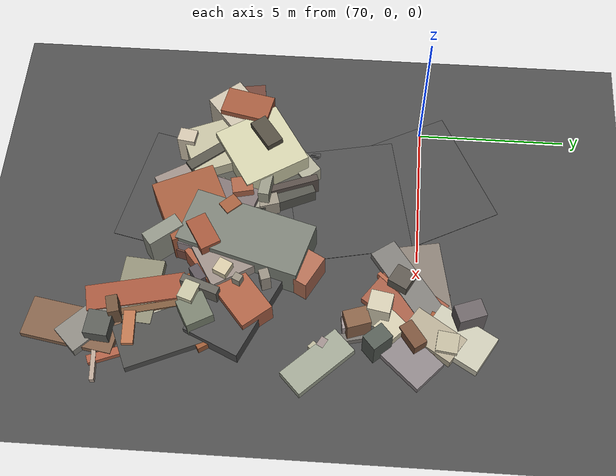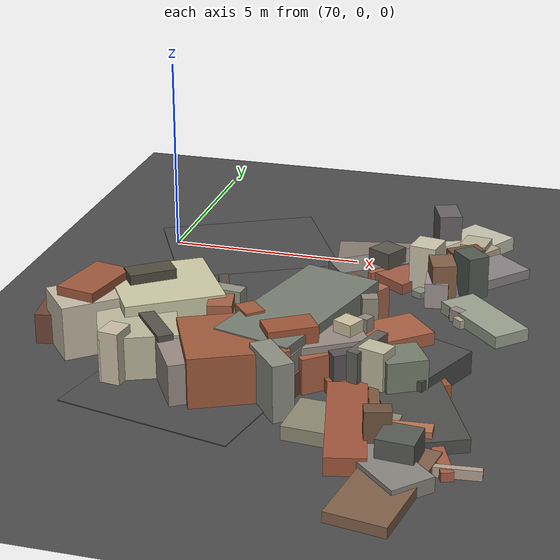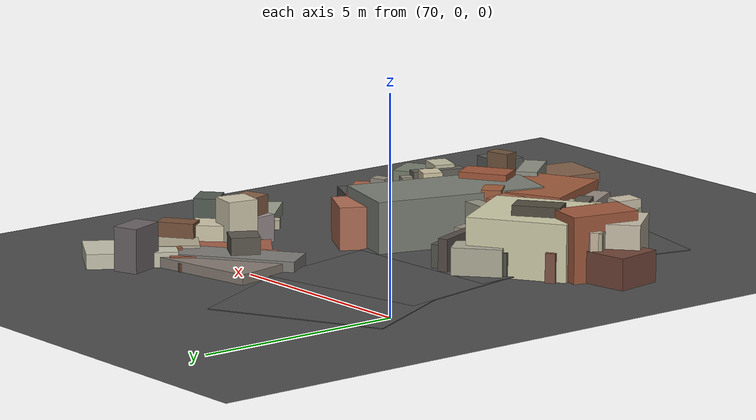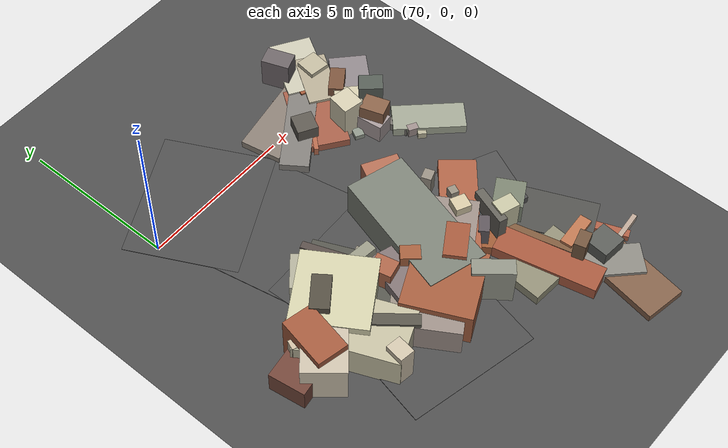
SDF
<sdf version="1.6">
 <world name="navitas_arena">
  <model name="ground_plane">
   <static>true</static>
   <link name="link">
    <collision name="collision">
     <geometry><plane><normal>0 0 1</normal><size>400 400</size></plane></geometry>
     <surface><friction><ode><mu>0.800</mu><mu2>0.800</mu2></ode></friction></surface>
    </collision>
    <visual name="visual">
     <cast_shadows>false</cast_shadows>
     <geometry><plane><normal>0 0 1</normal><size>400 400</size></plane></geometry>
     <material>
      <specular>0.04 0.04 0.04 1</specular>
      <script>
       <uri>file://media/materials/scripts/navitas_asphalt.material</uri>
       <name>Navitas/RealArenaAsphalt</name>
      </script>
     </material>
    </visual>
   </link>
  </model>
  <model name="road_zor_1_9">
   <static>true</static>
   <pose>72.908 -7.898 0.040 0 0 1.351</pose>
   <link name="link">
    <collision name="col"><geometry><box><size>3.560 4.200 0.020</size></box></geometry></collision>
    <visual name="vis">
     <geometry><box><size>3.560 4.200 0.020</size></box></geometry>
     <material>
      <specular>0.04 0.04 0.04 1</specular>
      <script>
       <uri>file://media/materials/scripts/navitas_asphalt.material</uri>
       <name>Navitas/RealArenaAsphalt</name>
      </script>
     </material>
    </visual>
   </link>
  </model>
  <model name="road_zor_1_10">
   <static>true</static>
   <pose>73.149 -5.200 0.040 0 0 1.606</pose>
   <link name="link">
    <collision name="col"><geometry><box><size>3.702 4.200 0.020</size></box></geometry></collision>
    <visual name="vis">
     <geometry><box><size>3.702 4.200 0.020</size></box></geometry>
     <material>
      <specular>0.04 0.04 0.04 1</specular>
      <script>
       <uri>file://media/materials/scripts/navitas_asphalt.material</uri>
       <name>Navitas/RealArenaAsphalt</name>
      </script>
     </material>
    </visual>
   </link>
  </model>
  <model name="road_zor_1_11">
   <static>true</static>
   <pose>72.821 -2.400 0.040 0 0 1.767</pose>
   <link name="link">
    <collision name="col"><geometry><box><size>3.755 4.200 0.020</size></box></geometry></collision>
    <visual name="vis">
     <geometry><box><size>3.755 4.200 0.020</size></box></geometry>
     <material>
      <specular>0.04 0.04 0.04 1</specular>
      <script>
       <uri>file://media/materials/scripts/navitas_asphalt.material</uri>
       <name>Navitas/RealArenaAsphalt</name>
      </script>
     </material>
    </visual>
   </link>
  </model>
  <model name="road_zor_1_12">
   <static>true</static>
   <pose>71.950 0.167 0.040 0 0 2.041</pose>
   <link name="link">
    <collision name="col"><geometry><box><size>3.517 4.200 0.020</size></box></geometry></collision>
    <visual name="vis">
     <geometry><box><size>3.517 4.200 0.020</size></box></geometry>
     <material>
      <specular>0.04 0.04 0.04 1</specular>
      <script>
       <uri>file://media/materials/scripts/navitas_asphalt.material</uri>
       <name>Navitas/RealArenaAsphalt</name>
      </script>
     </material>
    </visual>
   </link>
  </model>
  <model name="blk_zor_1_1_0">
   <static>true</static>
   <pose>71.181 -6.676 0.000 0 0 0</pose>
   <link name="link">
    <collision name="col_0">
     <pose>-0.888 0.814 0.570 0.000 0.000 2.160</pose>
     <geometry><box><size>1.327 1.105 1.140</size></box></geometry>
    </collision>
    <visual name="vis_0">
     <pose>-0.888 0.814 0.570 0.000 0.000 2.160</pose>
     <geometry><box><size>1.327 1.105 1.140</size></box></geometry>
     <material>
      <ambient>0.64 0.62 0.53 1</ambient>
      <diffuse>0.69 0.67 0.57 1</diffuse>
      <specular>0.05 0.05 0.045 1</specular>
     </material>
    </visual>
    <collision name="col_1">
     <pose>-0.994 0.870 0.580 0.000 0.000 2.738</pose>
     <geometry><box><size>1.381 0.304 1.161</size></box></geometry>
    </collision>
    <visual name="vis_1">
     <pose>-0.994 0.870 0.580 0.000 0.000 2.738</pose>
     <geometry><box><size>1.381 0.304 1.161</size></box></geometry>
     <material>
      <ambient>0.73 0.67 0.58 1</ambient>
      <diffuse>0.79 0.72 0.62 1</diffuse>
      <specular>0.05 0.05 0.045 1</specular>
     </material>
    </visual>
    <collision name="col_2">
     <pose>0.207 0.009 0.542 0.000 0.000 1.966</pose>
     <geometry><box><size>2.519 1.809 1.085</size></box></geometry>
    </collision>
    <visual name="vis_2">
     <pose>0.207 0.009 0.542 0.000 0.000 1.966</pose>
     <geometry><box><size>2.519 1.809 1.085</size></box></geometry>
     <material>
      <ambient>0.70 0.68 0.57 1</ambient>
      <diffuse>0.75 0.73 0.62 1</diffuse>
      <specular>0.05 0.05 0.045 1</specular>
     </material>
    </visual>
    <collision name="col_3">
     <pose>0.146 -1.225 0.644 0.000 0.000 2.996</pose>
     <geometry><box><size>0.485 0.592 1.288</size></box></geometry>
    </collision>
    <visual name="vis_3">
     <pose>0.146 -1.225 0.644 0.000 0.000 2.996</pose>
     <geometry><box><size>0.485 0.592 1.288</size></box></geometry>
     <material>
      <ambient>0.74 0.69 0.61 1</ambient>
      <diffuse>0.80 0.75 0.66 1</diffuse>
      <specular>0.05 0.05 0.045 1</specular>
     </material>
    </visual>
    <collision name="col_4">
     <pose>0.417 1.320 0.668 0.000 0.000 3.704</pose>
     <geometry><box><size>2.362 2.282 1.337</size></box></geometry>
    </collision>
    <visual name="vis_4">
     <pose>0.417 1.320 0.668 0.000 0.000 3.704</pose>
     <geometry><box><size>2.362 2.282 1.337</size></box></geometry>
     <material>
      <ambient>0.75 0.74 0.61 1</ambient>
      <diffuse>0.81 0.80 0.66 1</diffuse>
      <specular>0.05 0.05 0.045 1</specular>
     </material>
    </visual>
    <collision name="col_5">
     <pose>0.540 -0.128 0.581 0.000 0.000 2.250</pose>
     <geometry><box><size>2.366 0.362 1.161</size></box></geometry>
    </collision>
    <visual name="vis_5">
     <pose>0.540 -0.128 0.581 0.000 0.000 2.250</pose>
     <geometry><box><size>2.366 0.362 1.161</size></box></geometry>
     <material>
      <ambient>0.31 0.31 0.27 1</ambient>
      <diffuse>0.34 0.33 0.29 1</diffuse>
      <specular>0.05 0.05 0.045 1</specular>
     </material>
    </visual>
   </link>
  </model>
  <model name="blk_zor_1_1_1">
   <static>true</static>
   <pose>70.806 -5.240 0.000 0 0 0</pose>
   <link name="link">
    <collision name="col_0">
     <pose>0.076 -0.575 0.432 0.000 0.000 0.610</pose>
     <geometry><box><size>2.825 1.135 0.864</size></box></geometry>
    </collision>
    <visual name="vis_0">
     <pose>0.076 -0.575 0.432 0.000 0.000 0.610</pose>
     <geometry><box><size>2.825 1.135 0.864</size></box></geometry>
     <material>
      <ambient>0.30 0.27 0.26 1</ambient>
      <diffuse>0.32 0.30 0.28 1</diffuse>
      <specular>0.05 0.05 0.045 1</specular>
     </material>
    </visual>
    <collision name="col_1">
     <pose>-0.483 0.354 0.339 0.000 0.000 2.197</pose>
     <geometry><box><size>0.353 0.237 0.679</size></box></geometry>
    </collision>
    <visual name="vis_1">
     <pose>-0.483 0.354 0.339 0.000 0.000 2.197</pose>
     <geometry><box><size>0.353 0.237 0.679</size></box></geometry>
     <material>
      <ambient>0.45 0.30 0.24 1</ambient>
      <diffuse>0.49 0.32 0.26 1</diffuse>
      <specular>0.05 0.05 0.045 1</specular>
     </material>
    </visual>
    <collision name="col_2">
     <pose>-0.715 -0.724 0.766 0.000 0.000 1.361</pose>
     <geometry><box><size>1.624 0.979 1.531</size></box></geometry>
    </collision>
    <visual name="vis_2">
     <pose>-0.715 -0.724 0.766 0.000 0.000 1.361</pose>
     <geometry><box><size>1.624 0.979 1.531</size></box></geometry>
     <material>
      <ambient>0.58 0.33 0.22 1</ambient>
      <diffuse>0.63 0.35 0.24 1</diffuse>
      <specular>0.05 0.05 0.045 1</specular>
     </material>
    </visual>
    <collision name="col_3">
     <pose>-0.112 -0.373 0.599 0.000 0.000 1.790</pose>
     <geometry><box><size>1.108 1.073 1.199</size></box></geometry>
    </collision>
    <visual name="vis_3">
     <pose>-0.112 -0.373 0.599 0.000 0.000 1.790</pose>
     <geometry><box><size>1.108 1.073 1.199</size></box></geometry>
     <material>
      <ambient>0.51 0.51 0.50 1</ambient>
      <diffuse>0.55 0.55 0.54 1</diffuse>
      <specular>0.05 0.05 0.045 1</specular>
     </material>
    </visual>
    <collision name="col_4">
     <pose>-0.468 -0.624 0.368 0.000 0.000 0.147</pose>
     <geometry><box><size>3.207 1.150 0.736</size></box></geometry>
    </collision>
    <visual name="vis_4">
     <pose>-0.468 -0.624 0.368 0.000 0.000 0.147</pose>
     <geometry><box><size>3.207 1.150 0.736</size></box></geometry>
     <material>
      <ambient>0.41 0.25 0.20 1</ambient>
      <diffuse>0.44 0.27 0.22 1</diffuse>
      <specular>0.05 0.05 0.045 1</specular>
     </material>
    </visual>
    <collision name="col_5">
     <pose>-0.342 -0.734 0.652 0.000 0.000 0.700</pose>
     <geometry><box><size>2.702 1.296 1.304</size></box></geometry>
    </collision>
    <visual name="vis_5">
     <pose>-0.342 -0.734 0.652 0.000 0.000 0.700</pose>
     <geometry><box><size>2.702 1.296 1.304</size></box></geometry>
     <material>
      <ambient>0.72 0.69 0.61 1</ambient>
      <diffuse>0.78 0.74 0.66 1</diffuse>
      <specular>0.05 0.05 0.045 1</specular>
     </material>
    </visual>
   </link>
  </model>
  <model name="blk_zor_1_1_2">
   <static>true</static>
   <pose>72.535 -5.045 0.000 0 0 0</pose>
   <link name="link">
    <collision name="col_0">
     <pose>0.825 -0.116 0.352 0.000 0.000 1.864</pose>
     <geometry><box><size>0.981 0.465 0.704</size></box></geometry>
    </collision>
    <visual name="vis_0">
     <pose>0.825 -0.116 0.352 0.000 0.000 1.864</pose>
     <geometry><box><size>0.981 0.465 0.704</size></box></geometry>
     <material>
      <ambient>0.56 0.54 0.48 1</ambient>
      <diffuse>0.61 0.58 0.52 1</diffuse>
      <specular>0.05 0.05 0.045 1</specular>
     </material>
    </visual>
    <collision name="col_1">
     <pose>-0.741 1.050 0.345 0.000 0.000 2.272</pose>
     <geometry><box><size>0.706 1.170 0.689</size></box></geometry>
    </collision>
    <visual name="vis_1">
     <pose>-0.741 1.050 0.345 0.000 0.000 2.272</pose>
     <geometry><box><size>0.706 1.170 0.689</size></box></geometry>
     <material>
      <ambient>0.63 0.62 0.55 1</ambient>
      <diffuse>0.68 0.67 0.59 1</diffuse>
      <specular>0.05 0.05 0.045 1</specular>
     </material>
    </visual>
    <collision name="col_2">
     <pose>0.591 -0.821 0.638 0.000 0.000 1.791</pose>
     <geometry><box><size>0.689 0.577 1.275</size></box></geometry>
    </collision>
    <visual name="vis_2">
     <pose>0.591 -0.821 0.638 0.000 0.000 1.791</pose>
     <geometry><box><size>0.689 0.577 1.275</size></box></geometry>
     <material>
      <ambient>0.61 0.36 0.26 1</ambient>
      <diffuse>0.66 0.39 0.28 1</diffuse>
      <specular>0.05 0.05 0.045 1</specular>
     </material>
    </visual>
    <collision name="col_3">
     <pose>-1.349 -0.176 0.786 0.000 0.000 2.211</pose>
     <geometry><box><size>0.575 1.123 1.573</size></box></geometry>
    </collision>
    <visual name="vis_3">
     <pose>-1.349 -0.176 0.786 0.000 0.000 2.211</pose>
     <geometry><box><size>0.575 1.123 1.573</size></box></geometry>
     <material>
      <ambient>0.30 0.28 0.23 1</ambient>
      <diffuse>0.32 0.30 0.25 1</diffuse>
      <specular>0.05 0.05 0.045 1</specular>
     </material>
    </visual>
    <collision name="col_4">
     <pose>0.570 -0.033 0.309 0.000 0.000 0.916</pose>
     <geometry><box><size>0.415 0.260 0.619</size></box></geometry>
    </collision>
    <visual name="vis_4">
     <pose>0.570 -0.033 0.309 0.000 0.000 0.916</pose>
     <geometry><box><size>0.415 0.260 0.619</size></box></geometry>
     <material>
      <ambient>0.49 0.44 0.43 1</ambient>
      <diffuse>0.53 0.47 0.46 1</diffuse>
      <specular>0.05 0.05 0.045 1</specular>
     </material>
    </visual>
    <collision name="col_5">
     <pose>-0.225 0.028 0.627 0.000 0.000 -0.117</pose>
     <geometry><box><size>2.296 0.360 1.255</size></box></geometry>
    </collision>
    <visual name="vis_5">
     <pose>-0.225 0.028 0.627 0.000 0.000 -0.117</pose>
     <geometry><box><size>2.296 0.360 1.255</size></box></geometry>
     <material>
      <ambient>0.54 0.55 0.48 1</ambient>
      <diffuse>0.59 0.59 0.52 1</diffuse>
      <specular>0.05 0.05 0.045 1</specular>
     </material>
    </visual>
    <collision name="col_6">
     <pose>0.238 -0.563 0.297 0.000 0.000 1.991</pose>
     <geometry><box><size>3.847 1.899 0.595</size></box></geometry>
    </collision>
    <visual name="vis_6">
     <pose>0.238 -0.563 0.297 0.000 0.000 1.991</pose>
     <geometry><box><size>3.847 1.899 0.595</size></box></geometry>
     <material>
      <ambient>0.31 0.31 0.28 1</ambient>
      <diffuse>0.33 0.33 0.30 1</diffuse>
      <specular>0.05 0.05 0.045 1</specular>
     </material>
    </visual>
    <collision name="col_7">
     <pose>0.218 0.677 0.403 0.000 0.000 1.928</pose>
     <geometry><box><size>2.001 0.239 0.806</size></box></geometry>
    </collision>
    <visual name="vis_7">
     <pose>0.218 0.677 0.403 0.000 0.000 1.928</pose>
     <geometry><box><size>2.001 0.239 0.806</size></box></geometry>
     <material>
      <ambient>0.31 0.28 0.26 1</ambient>
      <diffuse>0.34 0.30 0.28 1</diffuse>
      <specular>0.05 0.05 0.045 1</specular>
     </material>
    </visual>
   </link>
  </model>
  <model name="blk_zor_1_1_3">
   <static>true</static>
   <pose>73.668 -6.016 0.000 0 0 0</pose>
   <link name="link">
    <collision name="col_0">
     <pose>0.939 -0.050 0.439 0.000 0.000 2.119</pose>
     <geometry><box><size>0.554 0.637 0.879</size></box></geometry>
    </collision>
    <visual name="vis_0">
     <pose>0.939 -0.050 0.439 0.000 0.000 2.119</pose>
     <geometry><box><size>0.554 0.637 0.879</size></box></geometry>
     <material>
      <ambient>0.61 0.35 0.23 1</ambient>
      <diffuse>0.66 0.38 0.25 1</diffuse>
      <specular>0.05 0.05 0.045 1</specular>
     </material>
    </visual>
    <collision name="col_1">
     <pose>0.922 0.395 0.418 0.000 0.000 2.002</pose>
     <geometry><box><size>0.328 0.262 0.836</size></box></geometry>
    </collision>
    <visual name="vis_1">
     <pose>0.922 0.395 0.418 0.000 0.000 2.002</pose>
     <geometry><box><size>0.328 0.262 0.836</size></box></geometry>
     <material>
      <ambient>0.50 0.52 0.46 1</ambient>
      <diffuse>0.54 0.56 0.50 1</diffuse>
      <specular>0.05 0.05 0.045 1</specular>
     </material>
    </visual>
    <collision name="col_2">
     <pose>0.503 -0.531 0.480 0.000 0.000 2.852</pose>
     <geometry><box><size>2.712 1.909 0.960</size></box></geometry>
    </collision>
    <visual name="vis_2">
     <pose>0.503 -0.531 0.480 0.000 0.000 2.852</pose>
     <geometry><box><size>2.712 1.909 0.960</size></box></geometry>
     <material>
      <ambient>0.46 0.42 0.41 1</ambient>
      <diffuse>0.50 0.45 0.45 1</diffuse>
      <specular>0.05 0.05 0.045 1</specular>
     </material>
    </visual>
    <collision name="col_3">
     <pose>-0.926 -1.175 0.517 0.000 0.000 1.659</pose>
     <geometry><box><size>0.504 0.282 1.034</size></box></geometry>
    </collision>
    <visual name="vis_3">
     <pose>-0.926 -1.175 0.517 0.000 0.000 1.659</pose>
     <geometry><box><size>0.504 0.282 1.034</size></box></geometry>
     <material>
      <ambient>0.60 0.58 0.53 1</ambient>
      <diffuse>0.64 0.63 0.57 1</diffuse>
      <specular>0.05 0.05 0.045 1</specular>
     </material>
    </visual>
    <collision name="col_4">
     <pose>0.753 -0.970 0.509 0.000 0.000 3.690</pose>
     <geometry><box><size>4.529 1.570 1.019</size></box></geometry>
    </collision>
    <visual name="vis_4">
     <pose>0.753 -0.970 0.509 0.000 0.000 3.690</pose>
     <geometry><box><size>4.529 1.570 1.019</size></box></geometry>
     <material>
      <ambient>0.56 0.51 0.48 1</ambient>
      <diffuse>0.60 0.55 0.52 1</diffuse>
      <specular>0.05 0.05 0.045 1</specular>
     </material>
    </visual>
    <collision name="col_5">
     <pose>0.882 -0.965 0.526 0.000 0.000 1.951</pose>
     <geometry><box><size>0.384 0.346 1.052</size></box></geometry>
    </collision>
    <visual name="vis_5">
     <pose>0.882 -0.965 0.526 0.000 0.000 1.951</pose>
     <geometry><box><size>0.384 0.346 1.052</size></box></geometry>
     <material>
      <ambient>0.44 0.31 0.25 1</ambient>
      <diffuse>0.47 0.33 0.27 1</diffuse>
      <specular>0.05 0.05 0.045 1</specular>
     </material>
    </visual>
    <collision name="col_6">
     <pose>1.060 0.466 0.482 0.000 0.000 1.258</pose>
     <geometry><box><size>4.113 0.951 0.964</size></box></geometry>
    </collision>
    <visual name="vis_6">
     <pose>1.060 0.466 0.482 0.000 0.000 1.258</pose>
     <geometry><box><size>4.113 0.951 0.964</size></box></geometry>
     <material>
      <ambient>0.75 0.73 0.62 1</ambient>
      <diffuse>0.81 0.78 0.67 1</diffuse>
      <specular>0.05 0.05 0.045 1</specular>
     </material>
    </visual>
    <collision name="col_7">
     <pose>-1.383 0.355 0.372 0.000 0.000 3.279</pose>
     <geometry><box><size>2.848 0.420 0.743</size></box></geometry>
    </collision>
    <visual name="vis_7">
     <pose>-1.383 0.355 0.372 0.000 0.000 3.279</pose>
     <geometry><box><size>2.848 0.420 0.743</size></box></geometry>
     <material>
      <ambient>0.59 0.57 0.51 1</ambient>
      <diffuse>0.64 0.62 0.56 1</diffuse>
      <specular>0.05 0.05 0.045 1</specular>
     </material>
    </visual>
   </link>
  </model>
  <model name="blk_zor_1_1_4">
   <static>true</static>
   <pose>74.778 -6.711 0.000 0 0 0</pose>
   <link name="link">
    <collision name="col_0">
     <pose>0.124 1.145 0.631 0.000 0.000 1.290</pose>
     <geometry><box><size>4.117 1.894 1.262</size></box></geometry>
    </collision>
    <visual name="vis_0">
     <pose>0.124 1.145 0.631 0.000 0.000 1.290</pose>
     <geometry><box><size>4.117 1.894 1.262</size></box></geometry>
     <material>
      <ambient>0.44 0.46 0.43 1</ambient>
      <diffuse>0.48 0.50 0.46 1</diffuse>
      <specular>0.05 0.05 0.045 1</specular>
     </material>
    </visual>
    <collision name="col_1">
     <pose>-0.098 -0.618 0.514 0.000 0.000 2.893</pose>
     <geometry><box><size>1.411 0.552 1.028</size></box></geometry>
    </collision>
    <visual name="vis_1">
     <pose>-0.098 -0.618 0.514 0.000 0.000 2.893</pose>
     <geometry><box><size>1.411 0.552 1.028</size></box></geometry>
     <material>
      <ambient>0.54 0.49 0.50 1</ambient>
      <diffuse>0.58 0.53 0.54 1</diffuse>
      <specular>0.05 0.05 0.045 1</specular>
     </material>
    </visual>
    <collision name="col_2">
     <pose>0.101 1.402 0.538 0.000 0.000 3.035</pose>
     <geometry><box><size>1.396 0.587 1.076</size></box></geometry>
    </collision>
    <visual name="vis_2">
     <pose>0.101 1.402 0.538 0.000 0.000 3.035</pose>
     <geometry><box><size>1.396 0.587 1.076</size></box></geometry>
     <material>
      <ambient>0.64 0.58 0.55 1</ambient>
      <diffuse>0.69 0.62 0.60 1</diffuse>
      <specular>0.05 0.05 0.045 1</specular>
     </material>
    </visual>
    <collision name="col_3">
     <pose>1.501 -0.287 0.462 0.000 0.000 3.769</pose>
     <geometry><box><size>0.570 0.322 0.923</size></box></geometry>
    </collision>
    <visual name="vis_3">
     <pose>1.501 -0.287 0.462 0.000 0.000 3.769</pose>
     <geometry><box><size>0.570 0.322 0.923</size></box></geometry>
     <material>
      <ambient>0.33 0.31 0.32 1</ambient>
      <diffuse>0.36 0.33 0.35 1</diffuse>
      <specular>0.05 0.05 0.045 1</specular>
     </material>
    </visual>
    <collision name="col_4">
     <pose>-0.859 0.547 0.659 0.000 0.000 2.301</pose>
     <geometry><box><size>0.593 0.466 1.317</size></box></geometry>
    </collision>
    <visual name="vis_4">
     <pose>-0.859 0.547 0.659 0.000 0.000 2.301</pose>
     <geometry><box><size>0.593 0.466 1.317</size></box></geometry>
     <material>
      <ambient>0.59 0.34 0.22 1</ambient>
      <diffuse>0.63 0.37 0.24 1</diffuse>
      <specular>0.05 0.05 0.045 1</specular>
     </material>
    </visual>
    <collision name="col_5">
     <pose>-0.513 0.194 0.282 0.000 0.000 2.877</pose>
     <geometry><box><size>2.749 2.170 0.563</size></box></geometry>
    </collision>
    <visual name="vis_5">
     <pose>-0.513 0.194 0.282 0.000 0.000 2.877</pose>
     <geometry><box><size>2.749 2.170 0.563</size></box></geometry>
     <material>
      <ambient>0.43 0.27 0.22 1</ambient>
      <diffuse>0.46 0.29 0.24 1</diffuse>
      <specular>0.05 0.05 0.045 1</specular>
     </material>
    </visual>
    <collision name="col_6">
     <pose>-0.212 0.277 0.350 0.000 0.000 3.725</pose>
     <geometry><box><size>3.516 2.008 0.700</size></box></geometry>
    </collision>
    <visual name="vis_6">
     <pose>-0.212 0.277 0.350 0.000 0.000 3.725</pose>
     <geometry><box><size>3.516 2.008 0.700</size></box></geometry>
     <material>
      <ambient>0.54 0.51 0.46 1</ambient>
      <diffuse>0.59 0.55 0.50 1</diffuse>
      <specular>0.05 0.05 0.045 1</specular>
     </material>
    </visual>
    <collision name="col_7">
     <pose>0.242 -1.528 0.667 0.000 0.000 2.260</pose>
     <geometry><box><size>1.250 0.507 1.333</size></box></geometry>
    </collision>
    <visual name="vis_7">
     <pose>0.242 -1.528 0.667 0.000 0.000 2.260</pose>
     <geometry><box><size>1.250 0.507 1.333</size></box></geometry>
     <material>
      <ambient>0.51 0.52 0.48 1</ambient>
      <diffuse>0.56 0.57 0.52 1</diffuse>
      <specular>0.05 0.05 0.045 1</specular>
     </material>
    </visual>
    <collision name="col_8">
     <pose>0.119 1.535 0.473 0.000 0.000 3.531</pose>
     <geometry><box><size>1.812 0.350 0.945</size></box></geometry>
    </collision>
    <visual name="vis_8">
     <pose>0.119 1.535 0.473 0.000 0.000 3.531</pose>
     <geometry><box><size>1.812 0.350 0.945</size></box></geometry>
     <material>
      <ambient>0.57 0.32 0.17 1</ambient>
      <diffuse>0.62 0.34 0.19 1</diffuse>
      <specular>0.05 0.05 0.045 1</specular>
     </material>
    </visual>
    <collision name="col_9">
     <pose>-0.890 -0.696 0.616 0.000 0.000 2.009</pose>
     <geometry><box><size>2.109 2.234 1.232</size></box></geometry>
    </collision>
    <visual name="vis_9">
     <pose>-0.890 -0.696 0.616 0.000 0.000 2.009</pose>
     <geometry><box><size>2.109 2.234 1.232</size></box></geometry>
     <material>
      <ambient>0.58 0.33 0.22 1</ambient>
      <diffuse>0.63 0.36 0.24 1</diffuse>
      <specular>0.05 0.05 0.045 1</specular>
     </material>
    </visual>
   </link>
  </model>
  <model name="blk_zor_1_1_5">
   <static>true</static>
   <pose>75.751 -5.990 0.000 0 0 0</pose>
   <link name="link">
    <collision name="col_0">
     <pose>0.636 1.150 0.652 0.000 0.000 -1.231</pose>
     <geometry><box><size>0.312 0.372 1.304</size></box></geometry>
    </collision>
    <visual name="vis_0">
     <pose>0.636 1.150 0.652 0.000 0.000 -1.231</pose>
     <geometry><box><size>0.312 0.372 1.304</size></box></geometry>
     <material>
      <ambient>0.54 0.51 0.46 1</ambient>
      <diffuse>0.58 0.55 0.50 1</diffuse>
      <specular>0.05 0.05 0.045 1</specular>
     </material>
    </visual>
    <collision name="col_1">
     <pose>0.634 -0.033 0.427 0.000 0.000 0.698</pose>
     <geometry><box><size>3.295 1.132 0.853</size></box></geometry>
    </collision>
    <visual name="vis_1">
     <pose>0.634 -0.033 0.427 0.000 0.000 0.698</pose>
     <geometry><box><size>3.295 1.132 0.853</size></box></geometry>
     <material>
      <ambient>0.62 0.35 0.25 1</ambient>
      <diffuse>0.67 0.38 0.27 1</diffuse>
      <specular>0.05 0.05 0.045 1</specular>
     </material>
    </visual>
    <collision name="col_2">
     <pose>-0.406 1.400 0.502 0.000 0.000 1.071</pose>
     <geometry><box><size>3.033 1.153 1.005</size></box></geometry>
    </collision>
    <visual name="vis_2">
     <pose>-0.406 1.400 0.502 0.000 0.000 1.071</pose>
     <geometry><box><size>3.033 1.153 1.005</size></box></geometry>
     <material>
      <ambient>0.64 0.40 0.31 1</ambient>
      <diffuse>0.69 0.43 0.33 1</diffuse>
      <specular>0.05 0.05 0.045 1</specular>
     </material>
    </visual>
    <collision name="col_3">
     <pose>-1.001 -0.591 0.604 0.000 0.000 0.659</pose>
     <geometry><box><size>0.472 0.248 1.208</size></box></geometry>
    </collision>
    <visual name="vis_3">
     <pose>-1.001 -0.591 0.604 0.000 0.000 0.659</pose>
     <geometry><box><size>0.472 0.248 1.208</size></box></geometry>
     <material>
      <ambient>0.49 0.51 0.48 1</ambient>
      <diffuse>0.53 0.55 0.52 1</diffuse>
      <specular>0.05 0.05 0.045 1</specular>
     </material>
    </visual>
    <collision name="col_4">
     <pose>0.737 0.305 0.594 0.000 0.000 1.136</pose>
     <geometry><box><size>0.273 0.256 1.188</size></box></geometry>
    </collision>
    <visual name="vis_4">
     <pose>0.737 0.305 0.594 0.000 0.000 1.136</pose>
     <geometry><box><size>0.273 0.256 1.188</size></box></geometry>
     <material>
      <ambient>0.54 0.51 0.45 1</ambient>
      <diffuse>0.58 0.55 0.49 1</diffuse>
      <specular>0.05 0.05 0.045 1</specular>
     </material>
    </visual>
    <collision name="col_5">
     <pose>0.447 -0.183 0.652 0.000 0.000 -0.442</pose>
     <geometry><box><size>0.485 0.465 1.304</size></box></geometry>
    </collision>
    <visual name="vis_5">
     <pose>0.447 -0.183 0.652 0.000 0.000 -0.442</pose>
     <geometry><box><size>0.485 0.465 1.304</size></box></geometry>
     <material>
      <ambient>0.76 0.71 0.59 1</ambient>
      <diffuse>0.82 0.77 0.64 1</diffuse>
      <specular>0.05 0.05 0.045 1</specular>
     </material>
    </visual>
    <collision name="col_6">
     <pose>0.716 0.516 0.275 0.000 0.000 -0.429</pose>
     <geometry><box><size>4.434 1.933 0.551</size></box></geometry>
    </collision>
    <visual name="vis_6">
     <pose>0.716 0.516 0.275 0.000 0.000 -0.429</pose>
     <geometry><box><size>4.434 1.933 0.551</size></box></geometry>
     <material>
      <ambient>0.28 0.28 0.28 1</ambient>
      <diffuse>0.31 0.31 0.31 1</diffuse>
      <specular>0.05 0.05 0.045 1</specular>
     </material>
    </visual>
    <collision name="col_7">
     <pose>-0.709 -0.928 0.706 0.000 0.000 0.557</pose>
     <geometry><box><size>1.155 0.680 1.413</size></box></geometry>
    </collision>
    <visual name="vis_7">
     <pose>-0.709 -0.928 0.706 0.000 0.000 0.557</pose>
     <geometry><box><size>1.155 0.680 1.413</size></box></geometry>
     <material>
      <ambient>0.58 0.31 0.21 1</ambient>
      <diffuse>0.63 0.34 0.23 1</diffuse>
      <specular>0.05 0.05 0.045 1</specular>
     </material>
    </visual>
    <collision name="col_8">
     <pose>-0.601 0.449 0.543 0.000 0.000 1.259</pose>
     <geometry><box><size>0.529 0.363 1.085</size></box></geometry>
    </collision>
    <visual name="vis_8">
     <pose>-0.601 0.449 0.543 0.000 0.000 1.259</pose>
     <geometry><box><size>0.529 0.363 1.085</size></box></geometry>
     <material>
      <ambient>0.64 0.40 0.25 1</ambient>
      <diffuse>0.69 0.43 0.26 1</diffuse>
      <specular>0.05 0.05 0.045 1</specular>
     </material>
    </visual>
    <collision name="col_9">
     <pose>1.034 -0.856 0.575 0.000 0.000 1.235</pose>
     <geometry><box><size>1.260 0.276 1.149</size></box></geometry>
    </collision>
    <visual name="vis_9">
     <pose>1.034 -0.856 0.575 0.000 0.000 1.235</pose>
     <geometry><box><size>1.260 0.276 1.149</size></box></geometry>
     <material>
      <ambient>0.36 0.35 0.32 1</ambient>
      <diffuse>0.39 0.38 0.35 1</diffuse>
      <specular>0.05 0.05 0.045 1</specular>
     </material>
    </visual>
   </link>
  </model>
  <model name="deb_zor_34">
   <static>true</static>
   <pose>77.821 0.742 0.000 0 0 0</pose>
   <link name="link">
    <collision name="col_0">
     <pose>-0.720 0.900 0.516 0.000 0.000 3.492</pose>
     <geometry><box><size>0.597 0.903 1.032</size></box></geometry>
    </collision>
    <visual name="vis_0">
     <pose>-0.720 0.900 0.516 0.000 0.000 3.492</pose>
     <geometry><box><size>0.597 0.903 1.032</size></box></geometry>
     <material>
      <ambient>0.39 0.36 0.37 1</ambient>
      <diffuse>0.42 0.39 0.40 1</diffuse>
      <specular>0.05 0.05 0.045 1</specular>
     </material>
    </visual>
    <collision name="col_1">
     <pose>0.592 -0.957 0.127 0.000 0.000 3.968</pose>
     <geometry><box><size>1.931 1.193 0.254</size></box></geometry>
    </collision>
    <visual name="vis_1">
     <pose>0.592 -0.957 0.127 0.000 0.000 3.968</pose>
     <geometry><box><size>1.931 1.193 0.254</size></box></geometry>
     <material>
      <ambient>0.51 0.49 0.49 1</ambient>
      <diffuse>0.55 0.52 0.53 1</diffuse>
      <specular>0.05 0.05 0.045 1</specular>
     </material>
    </visual>
    <collision name="col_2">
     <pose>0.041 -0.845 0.354 0.000 0.000 3.762</pose>
     <geometry><box><size>0.866 0.471 0.707</size></box></geometry>
    </collision>
    <visual name="vis_2">
     <pose>0.041 -0.845 0.354 0.000 0.000 3.762</pose>
     <geometry><box><size>0.866 0.471 0.707</size></box></geometry>
     <material>
      <ambient>0.44 0.29 0.21 1</ambient>
      <diffuse>0.47 0.32 0.23 1</diffuse>
      <specular>0.05 0.05 0.045 1</specular>
     </material>
    </visual>
    <collision name="col_3">
     <pose>-0.126 -0.163 0.181 0.000 0.000 4.122</pose>
     <geometry><box><size>1.827 0.976 0.362</size></box></geometry>
    </collision>
    <visual name="vis_3">
     <pose>-0.126 -0.163 0.181 0.000 0.000 4.122</pose>
     <geometry><box><size>1.827 0.976 0.362</size></box></geometry>
     <material>
      <ambient>0.64 0.61 0.52 1</ambient>
      <diffuse>0.70 0.66 0.57 1</diffuse>
      <specular>0.05 0.05 0.045 1</specular>
     </material>
    </visual>
   </link>
  </model>
  <model name="deb_zor_114">
   <static>true</static>
   <pose>76.450 -0.220 0.000 0 0 0</pose>
   <link name="link">
    <collision name="col_0">
     <pose>-0.492 0.553 0.120 0.000 0.000 0.182</pose>
     <geometry><box><size>3.006 1.328 0.240</size></box></geometry>
    </collision>
    <visual name="vis_0">
     <pose>-0.492 0.553 0.120 0.000 0.000 0.182</pose>
     <geometry><box><size>3.006 1.328 0.240</size></box></geometry>
     <material>
      <ambient>0.49 0.46 0.41 1</ambient>
      <diffuse>0.53 0.49 0.45 1</diffuse>
      <specular>0.05 0.05 0.045 1</specular>
     </material>
    </visual>
    <collision name="col_1">
     <pose>0.139 -0.132 0.134 0.000 0.000 0.952</pose>
     <geometry><box><size>2.336 1.563 0.268</size></box></geometry>
    </collision>
    <visual name="vis_1">
     <pose>0.139 -0.132 0.134 0.000 0.000 0.952</pose>
     <geometry><box><size>2.336 1.563 0.268</size></box></geometry>
     <material>
      <ambient>0.59 0.34 0.26 1</ambient>
      <diffuse>0.64 0.37 0.28 1</diffuse>
      <specular>0.05 0.05 0.045 1</specular>
     </material>
    </visual>
    <collision name="col_2">
     <pose>-0.550 -0.040 0.148 0.000 0.000 0.620</pose>
     <geometry><box><size>3.026 0.903 0.296</size></box></geometry>
    </collision>
    <visual name="vis_2">
     <pose>-0.550 -0.040 0.148 0.000 0.000 0.620</pose>
     <geometry><box><size>3.026 0.903 0.296</size></box></geometry>
     <material>
      <ambient>0.46 0.45 0.43 1</ambient>
      <diffuse>0.50 0.49 0.47 1</diffuse>
      <specular>0.05 0.05 0.045 1</specular>
     </material>
    </visual>
    <collision name="col_3">
     <pose>0.082 0.202 0.065 0.000 0.000 0.770</pose>
     <geometry><box><size>1.136 0.252 0.130</size></box></geometry>
    </collision>
    <visual name="vis_3">
     <pose>0.082 0.202 0.065 0.000 0.000 0.770</pose>
     <geometry><box><size>1.136 0.252 0.130</size></box></geometry>
     <material>
      <ambient>0.66 0.43 0.29 1</ambient>
      <diffuse>0.72 0.46 0.31 1</diffuse>
      <specular>0.05 0.05 0.045 1</specular>
     </material>
    </visual>
    <collision name="col_4">
     <pose>-0.335 -0.422 0.137 0.000 0.000 0.842</pose>
     <geometry><box><size>1.563 0.141 0.274</size></box></geometry>
    </collision>
    <visual name="vis_4">
     <pose>-0.335 -0.422 0.137 0.000 0.000 0.842</pose>
     <geometry><box><size>1.563 0.141 0.274</size></box></geometry>
     <material>
      <ambient>0.65 0.38 0.28 1</ambient>
      <diffuse>0.70 0.41 0.30 1</diffuse>
      <specular>0.05 0.05 0.045 1</specular>
     </material>
    </visual>
    <collision name="col_5">
     <pose>-0.550 -0.267 0.348 0.000 0.000 1.062</pose>
     <geometry><box><size>0.679 0.663 0.697</size></box></geometry>
    </collision>
    <visual name="vis_5">
     <pose>-0.550 -0.267 0.348 0.000 0.000 1.062</pose>
     <geometry><box><size>0.679 0.663 0.697</size></box></geometry>
     <material>
      <ambient>0.33 0.31 0.28 1</ambient>
      <diffuse>0.36 0.34 0.31 1</diffuse>
      <specular>0.05 0.05 0.045 1</specular>
     </material>
    </visual>
    <collision name="col_6">
     <pose>-0.257 -0.003 0.108 0.000 0.000 1.314</pose>
     <geometry><box><size>0.377 0.367 0.217</size></box></geometry>
    </collision>
    <visual name="vis_6">
     <pose>-0.257 -0.003 0.108 0.000 0.000 1.314</pose>
     <geometry><box><size>0.377 0.367 0.217</size></box></geometry>
     <material>
      <ambient>0.39 0.26 0.20 1</ambient>
      <diffuse>0.42 0.28 0.21 1</diffuse>
      <specular>0.05 0.05 0.045 1</specular>
     </material>
    </visual>
   </link>
  </model>
  <model name="deb_zor_151">
   <static>true</static>
   <pose>77.544 -1.364 0.000 0 0 0</pose>
   <link name="link">
    <collision name="col_0">
     <pose>0.053 0.573 0.317 0.000 0.000 0.807</pose>
     <geometry><box><size>0.742 0.837 0.634</size></box></geometry>
    </collision>
    <visual name="vis_0">
     <pose>0.053 0.573 0.317 0.000 0.000 0.807</pose>
     <geometry><box><size>0.742 0.837 0.634</size></box></geometry>
     <material>
      <ambient>0.75 0.72 0.62 1</ambient>
      <diffuse>0.81 0.78 0.67 1</diffuse>
      <specular>0.05 0.05 0.045 1</specular>
     </material>
    </visual>
    <collision name="col_1">
     <pose>0.307 -0.535 0.130 0.000 0.000 -1.346</pose>
     <geometry><box><size>1.884 0.274 0.259</size></box></geometry>
    </collision>
    <visual name="vis_1">
     <pose>0.307 -0.535 0.130 0.000 0.000 -1.346</pose>
     <geometry><box><size>1.884 0.274 0.259</size></box></geometry>
     <material>
      <ambient>0.43 0.41 0.39 1</ambient>
      <diffuse>0.46 0.44 0.42 1</diffuse>
      <specular>0.05 0.05 0.045 1</specular>
     </material>
    </visual>
    <collision name="col_2">
     <pose>0.628 0.161 0.543 0.000 0.000 -0.854</pose>
     <geometry><box><size>0.743 0.566 1.086</size></box></geometry>
    </collision>
    <visual name="vis_2">
     <pose>0.628 0.161 0.543 0.000 0.000 -0.854</pose>
     <geometry><box><size>0.743 0.566 1.086</size></box></geometry>
     <material>
      <ambient>0.30 0.33 0.31 1</ambient>
      <diffuse>0.33 0.36 0.33 1</diffuse>
      <specular>0.05 0.05 0.045 1</specular>
     </material>
    </visual>
    <collision name="col_3">
     <pose>0.020 -0.506 0.546 0.000 0.000 -1.251</pose>
     <geometry><box><size>0.770 0.593 1.093</size></box></geometry>
    </collision>
    <visual name="vis_3">
     <pose>0.020 -0.506 0.546 0.000 0.000 -1.251</pose>
     <geometry><box><size>0.770 0.593 1.093</size></box></geometry>
     <material>
      <ambient>0.49 0.35 0.26 1</ambient>
      <diffuse>0.53 0.38 0.28 1</diffuse>
      <specular>0.05 0.05 0.045 1</specular>
     </material>
    </visual>
    <collision name="col_4">
     <pose>-0.486 0.199 0.616 0.000 0.000 1.387</pose>
     <geometry><box><size>0.727 0.680 1.231</size></box></geometry>
    </collision>
    <visual name="vis_4">
     <pose>-0.486 0.199 0.616 0.000 0.000 1.387</pose>
     <geometry><box><size>0.727 0.680 1.231</size></box></geometry>
     <material>
      <ambient>0.75 0.72 0.63 1</ambient>
      <diffuse>0.81 0.78 0.68 1</diffuse>
      <specular>0.05 0.05 0.045 1</specular>
     </material>
    </visual>
    <collision name="col_5">
     <pose>-0.543 -0.329 0.080 0.000 0.000 -0.507</pose>
     <geometry><box><size>0.299 0.321 0.160</size></box></geometry>
    </collision>
    <visual name="vis_5">
     <pose>-0.543 -0.329 0.080 0.000 0.000 -0.507</pose>
     <geometry><box><size>0.299 0.321 0.160</size></box></geometry>
     <material>
      <ambient>0.51 0.54 0.49 1</ambient>
      <diffuse>0.55 0.58 0.53 1</diffuse>
      <specular>0.05 0.05 0.045 1</specular>
     </material>
    </visual>
    <collision name="col_6">
     <pose>-0.083 -0.529 0.323 0.000 0.000 0.108</pose>
     <geometry><box><size>0.576 0.898 0.646</size></box></geometry>
    </collision>
    <visual name="vis_6">
     <pose>-0.083 -0.529 0.323 0.000 0.000 0.108</pose>
     <geometry><box><size>0.576 0.898 0.646</size></box></geometry>
     <material>
      <ambient>0.60 0.55 0.55 1</ambient>
      <diffuse>0.64 0.59 0.59 1</diffuse>
      <specular>0.05 0.05 0.045 1</specular>
     </material>
    </visual>
   </link>
  </model>
  <model name="deb_zor_233">
   <static>true</static>
   <pose>77.438 -7.740 0.000 0 0 0</pose>
   <link name="link">
    <collision name="col_0">
     <pose>-0.386 0.579 0.613 0.000 0.000 -0.327</pose>
     <geometry><box><size>0.647 0.497 1.227</size></box></geometry>
    </collision>
    <visual name="vis_0">
     <pose>-0.386 0.579 0.613 0.000 0.000 -0.327</pose>
     <geometry><box><size>0.647 0.497 1.227</size></box></geometry>
     <material>
      <ambient>0.70 0.70 0.59 1</ambient>
      <diffuse>0.76 0.75 0.63 1</diffuse>
      <specular>0.05 0.05 0.045 1</specular>
     </material>
    </visual>
    <collision name="col_1">
     <pose>0.228 0.797 0.144 0.000 0.000 0.497</pose>
     <geometry><box><size>0.370 0.284 0.287</size></box></geometry>
    </collision>
    <visual name="vis_1">
     <pose>0.228 0.797 0.144 0.000 0.000 0.497</pose>
     <geometry><box><size>0.370 0.284 0.287</size></box></geometry>
     <material>
      <ambient>0.55 0.52 0.50 1</ambient>
      <diffuse>0.59 0.56 0.54 1</diffuse>
      <specular>0.05 0.05 0.045 1</specular>
     </material>
    </visual>
    <collision name="col_2">
     <pose>-0.196 0.829 0.154 0.000 0.000 0.579</pose>
     <geometry><box><size>2.518 1.273 0.309</size></box></geometry>
    </collision>
    <visual name="vis_2">
     <pose>-0.196 0.829 0.154 0.000 0.000 0.579</pose>
     <geometry><box><size>2.518 1.273 0.309</size></box></geometry>
     <material>
      <ambient>0.56 0.32 0.20 1</ambient>
      <diffuse>0.60 0.35 0.21 1</diffuse>
      <specular>0.05 0.05 0.045 1</specular>
     </material>
    </visual>
    <collision name="col_3">
     <pose>-0.110 -0.741 0.182 0.000 0.000 1.811</pose>
     <geometry><box><size>2.297 0.229 0.364</size></box></geometry>
    </collision>
    <visual name="vis_3">
     <pose>-0.110 -0.741 0.182 0.000 0.000 1.811</pose>
     <geometry><box><size>2.297 0.229 0.364</size></box></geometry>
     <material>
      <ambient>0.46 0.33 0.22 1</ambient>
      <diffuse>0.49 0.35 0.24 1</diffuse>
      <specular>0.05 0.05 0.045 1</specular>
     </material>
    </visual>
    <collision name="col_4">
     <pose>0.762 -0.297 0.156 0.000 0.000 1.984</pose>
     <geometry><box><size>2.662 1.497 0.312</size></box></geometry>
    </collision>
    <visual name="vis_4">
     <pose>0.762 -0.297 0.156 0.000 0.000 1.984</pose>
     <geometry><box><size>2.662 1.497 0.312</size></box></geometry>
     <material>
      <ambient>0.28 0.28 0.28 1</ambient>
      <diffuse>0.31 0.31 0.30 1</diffuse>
      <specular>0.05 0.05 0.045 1</specular>
     </material>
    </visual>
    <collision name="col_5">
     <pose>0.130 0.811 0.511 0.000 0.000 2.076</pose>
     <geometry><box><size>0.899 0.936 1.022</size></box></geometry>
    </collision>
    <visual name="vis_5">
     <pose>0.130 0.811 0.511 0.000 0.000 2.076</pose>
     <geometry><box><size>0.899 0.936 1.022</size></box></geometry>
     <material>
      <ambient>0.44 0.47 0.40 1</ambient>
      <diffuse>0.47 0.50 0.43 1</diffuse>
      <specular>0.05 0.05 0.045 1</specular>
     </material>
    </visual>
   </link>
  </model>
  <model name="deb_zor_311">
   <static>true</static>
   <pose>78.234 -3.007 0.000 0 0 0</pose>
   <link name="link">
    <collision name="col_0">
     <pose>0.111 -0.076 0.107 0.000 0.000 0.834</pose>
     <geometry><box><size>0.503 0.266 0.213</size></box></geometry>
    </collision>
    <visual name="vis_0">
     <pose>0.111 -0.076 0.107 0.000 0.000 0.834</pose>
     <geometry><box><size>0.503 0.266 0.213</size></box></geometry>
     <material>
      <ambient>0.66 0.64 0.55 1</ambient>
      <diffuse>0.71 0.69 0.59 1</diffuse>
      <specular>0.05 0.05 0.045 1</specular>
     </material>
    </visual>
    <collision name="col_1">
     <pose>0.560 -0.012 0.152 0.000 0.000 2.335</pose>
     <geometry><box><size>2.254 0.945 0.304</size></box></geometry>
    </collision>
    <visual name="vis_1">
     <pose>0.560 -0.012 0.152 0.000 0.000 2.335</pose>
     <geometry><box><size>2.254 0.945 0.304</size></box></geometry>
     <material>
      <ambient>0.57 0.60 0.52 1</ambient>
      <diffuse>0.62 0.64 0.57 1</diffuse>
      <specular>0.05 0.05 0.045 1</specular>
     </material>
    </visual>
    <collision name="col_2">
     <pose>0.089 -0.071 0.079 0.000 0.000 1.025</pose>
     <geometry><box><size>0.296 0.167 0.159</size></box></geometry>
    </collision>
    <visual name="vis_2">
     <pose>0.089 -0.071 0.079 0.000 0.000 1.025</pose>
     <geometry><box><size>0.296 0.167 0.159</size></box></geometry>
     <material>
      <ambient>0.75 0.69 0.63 1</ambient>
      <diffuse>0.81 0.75 0.68 1</diffuse>
      <specular>0.05 0.05 0.045 1</specular>
     </material>
    </visual>
    <collision name="col_3">
     <pose>-0.088 0.100 0.153 0.000 0.000 2.632</pose>
     <geometry><box><size>0.330 0.235 0.305</size></box></geometry>
    </collision>
    <visual name="vis_3">
     <pose>-0.088 0.100 0.153 0.000 0.000 2.632</pose>
     <geometry><box><size>0.330 0.235 0.305</size></box></geometry>
     <material>
      <ambient>0.56 0.51 0.50 1</ambient>
      <diffuse>0.61 0.55 0.54 1</diffuse>
      <specular>0.05 0.05 0.045 1</specular>
     </material>
    </visual>
   </link>
  </model>
  <model name="deb_zor_313">
   <static>true</static>
   <pose>77.405 -9.015 0.000 0 0 0</pose>
   <link name="link">
    <collision name="col_0">
     <pose>0.839 0.039 0.120 0.000 0.000 2.424</pose>
     <geometry><box><size>0.458 0.275 0.240</size></box></geometry>
    </collision>
    <visual name="vis_0">
     <pose>0.839 0.039 0.120 0.000 0.000 2.424</pose>
     <geometry><box><size>0.458 0.275 0.240</size></box></geometry>
     <material>
      <ambient>0.62 0.59 0.57 1</ambient>
      <diffuse>0.67 0.63 0.62 1</diffuse>
      <specular>0.05 0.05 0.045 1</specular>
     </material>
    </visual>
    <collision name="col_1">
     <pose>0.184 -0.481 0.526 0.000 0.000 3.409</pose>
     <geometry><box><size>0.576 0.366 1.051</size></box></geometry>
    </collision>
    <visual name="vis_1">
     <pose>0.184 -0.481 0.526 0.000 0.000 3.409</pose>
     <geometry><box><size>0.576 0.366 1.051</size></box></geometry>
     <material>
      <ambient>0.41 0.31 0.22 1</ambient>
      <diffuse>0.44 0.33 0.24 1</diffuse>
      <specular>0.05 0.05 0.045 1</specular>
     </material>
    </visual>
    <collision name="col_2">
     <pose>-0.578 0.059 0.208 0.000 0.000 1.789</pose>
     <geometry><box><size>3.185 0.872 0.415</size></box></geometry>
    </collision>
    <visual name="vis_2">
     <pose>-0.578 0.059 0.208 0.000 0.000 1.789</pose>
     <geometry><box><size>3.185 0.872 0.415</size></box></geometry>
     <material>
      <ambient>0.59 0.31 0.22 1</ambient>
      <diffuse>0.64 0.34 0.24 1</diffuse>
      <specular>0.05 0.05 0.045 1</specular>
     </material>
    </visual>
    <collision name="col_3">
     <pose>0.480 0.414 0.130 0.000 0.000 2.317</pose>
     <geometry><box><size>1.756 0.271 0.261</size></box></geometry>
    </collision>
    <visual name="vis_3">
     <pose>0.480 0.414 0.130 0.000 0.000 2.317</pose>
     <geometry><box><size>1.756 0.271 0.261</size></box></geometry>
     <material>
      <ambient>0.73 0.72 0.64 1</ambient>
      <diffuse>0.78 0.77 0.69 1</diffuse>
      <specular>0.05 0.05 0.045 1</specular>
     </material>
    </visual>
    <collision name="col_4">
     <pose>0.137 0.293 0.061 0.000 0.000 3.464</pose>
     <geometry><box><size>1.565 0.207 0.122</size></box></geometry>
    </collision>
    <visual name="vis_4">
     <pose>0.137 0.293 0.061 0.000 0.000 3.464</pose>
     <geometry><box><size>1.565 0.207 0.122</size></box></geometry>
     <material>
      <ambient>0.57 0.52 0.50 1</ambient>
      <diffuse>0.61 0.56 0.54 1</diffuse>
      <specular>0.05 0.05 0.045 1</specular>
     </material>
    </visual>
    <collision name="col_5">
     <pose>0.674 0.013 0.226 0.000 0.000 3.207</pose>
     <geometry><box><size>1.129 0.375 0.452</size></box></geometry>
    </collision>
    <visual name="vis_5">
     <pose>0.674 0.013 0.226 0.000 0.000 3.207</pose>
     <geometry><box><size>1.129 0.375 0.452</size></box></geometry>
     <material>
      <ambient>0.68 0.43 0.28 1</ambient>
      <diffuse>0.73 0.46 0.31 1</diffuse>
      <specular>0.05 0.05 0.045 1</specular>
     </material>
    </visual>
    <collision name="col_6">
     <pose>-0.682 0.100 0.165 0.000 0.000 3.065</pose>
     <geometry><box><size>2.249 1.297 0.330</size></box></geometry>
    </collision>
    <visual name="vis_6">
     <pose>-0.682 0.100 0.165 0.000 0.000 3.065</pose>
     <geometry><box><size>2.249 1.297 0.330</size></box></geometry>
     <material>
      <ambient>0.52 0.51 0.43 1</ambient>
      <diffuse>0.56 0.55 0.46 1</diffuse>
      <specular>0.05 0.05 0.045 1</specular>
     </material>
    </visual>
   </link>
  </model>
  <model name="deb_zor_320">
   <static>true</static>
   <pose>77.973 0.455 0.000 0 0 0</pose>
   <link name="link">
    <collision name="col_0">
     <pose>0.004 0.533 0.255 0.000 0.000 3.006</pose>
     <geometry><box><size>0.677 0.686 0.510</size></box></geometry>
    </collision>
    <visual name="vis_0">
     <pose>0.004 0.533 0.255 0.000 0.000 3.006</pose>
     <geometry><box><size>0.677 0.686 0.510</size></box></geometry>
     <material>
      <ambient>0.68 0.66 0.56 1</ambient>
      <diffuse>0.74 0.71 0.61 1</diffuse>
      <specular>0.05 0.05 0.045 1</specular>
     </material>
    </visual>
    <collision name="col_1">
     <pose>-0.232 0.900 0.175 0.000 0.000 1.025</pose>
     <geometry><box><size>2.089 1.336 0.351</size></box></geometry>
    </collision>
    <visual name="vis_1">
     <pose>-0.232 0.900 0.175 0.000 0.000 1.025</pose>
     <geometry><box><size>2.089 1.336 0.351</size></box></geometry>
     <material>
      <ambient>0.72 0.71 0.64 1</ambient>
      <diffuse>0.78 0.77 0.69 1</diffuse>
      <specular>0.05 0.05 0.045 1</specular>
     </material>
    </visual>
    <collision name="col_2">
     <pose>-0.895 0.080 0.175 0.000 0.000 2.773</pose>
     <geometry><box><size>0.341 0.192 0.350</size></box></geometry>
    </collision>
    <visual name="vis_2">
     <pose>-0.895 0.080 0.175 0.000 0.000 2.773</pose>
     <geometry><box><size>0.341 0.192 0.350</size></box></geometry>
     <material>
      <ambient>0.59 0.32 0.20 1</ambient>
      <diffuse>0.64 0.35 0.22 1</diffuse>
      <specular>0.05 0.05 0.045 1</specular>
     </material>
    </visual>
    <collision name="col_3">
     <pose>-0.561 -0.195 0.098 0.000 0.000 2.916</pose>
     <geometry><box><size>2.738 1.083 0.195</size></box></geometry>
    </collision>
    <visual name="vis_3">
     <pose>-0.561 -0.195 0.098 0.000 0.000 2.916</pose>
     <geometry><box><size>2.738 1.083 0.195</size></box></geometry>
     <material>
      <ambient>0.43 0.29 0.22 1</ambient>
      <diffuse>0.46 0.31 0.24 1</diffuse>
      <specular>0.05 0.05 0.045 1</specular>
     </material>
    </visual>
   </link>
  </model>
  <model name="deb_zor_354">
   <static>true</static>
   <pose>78.550 -9.934 0.000 0 0 0</pose>
   <link name="link">
    <collision name="col_0">
     <pose>-0.416 0.026 0.391 0.000 0.000 3.049</pose>
     <geometry><box><size>0.819 0.770 0.782</size></box></geometry>
    </collision>
    <visual name="vis_0">
     <pose>-0.416 0.026 0.391 0.000 0.000 3.049</pose>
     <geometry><box><size>0.819 0.770 0.782</size></box></geometry>
     <material>
      <ambient>0.33 0.34 0.31 1</ambient>
      <diffuse>0.35 0.36 0.34 1</diffuse>
      <specular>0.05 0.05 0.045 1</specular>
     </material>
    </visual>
    <collision name="col_1">
     <pose>0.271 -0.072 0.113 0.000 0.000 3.227</pose>
     <geometry><box><size>1.995 0.144 0.227</size></box></geometry>
    </collision>
    <visual name="vis_1">
     <pose>0.271 -0.072 0.113 0.000 0.000 3.227</pose>
     <geometry><box><size>1.995 0.144 0.227</size></box></geometry>
     <material>
      <ambient>0.67 0.59 0.54 1</ambient>
      <diffuse>0.72 0.64 0.58 1</diffuse>
      <specular>0.05 0.05 0.045 1</specular>
     </material>
    </visual>
    <collision name="col_2">
     <pose>0.289 0.559 0.102 0.000 0.000 1.946</pose>
     <geometry><box><size>1.731 0.267 0.204</size></box></geometry>
    </collision>
    <visual name="vis_2">
     <pose>0.289 0.559 0.102 0.000 0.000 1.946</pose>
     <geometry><box><size>1.731 0.267 0.204</size></box></geometry>
     <material>
      <ambient>0.62 0.35 0.25 1</ambient>
      <diffuse>0.67 0.37 0.27 1</diffuse>
      <specular>0.05 0.05 0.045 1</specular>
     </material>
    </visual>
    <collision name="col_3">
     <pose>-0.878 0.850 0.091 0.000 0.000 1.239</pose>
     <geometry><box><size>0.326 0.334 0.181</size></box></geometry>
    </collision>
    <visual name="vis_3">
     <pose>-0.878 0.850 0.091 0.000 0.000 1.239</pose>
     <geometry><box><size>0.326 0.334 0.181</size></box></geometry>
     <material>
      <ambient>0.40 0.24 0.19 1</ambient>
      <diffuse>0.44 0.26 0.20 1</diffuse>
      <specular>0.05 0.05 0.045 1</specular>
     </material>
    </visual>
    <collision name="col_4">
     <pose>-0.518 -0.908 0.121 0.000 0.000 1.399</pose>
     <geometry><box><size>2.987 1.317 0.241</size></box></geometry>
    </collision>
    <visual name="vis_4">
     <pose>-0.518 -0.908 0.121 0.000 0.000 1.399</pose>
     <geometry><box><size>2.987 1.317 0.241</size></box></geometry>
     <material>
      <ambient>0.47 0.36 0.27 1</ambient>
      <diffuse>0.51 0.38 0.29 1</diffuse>
      <specular>0.05 0.05 0.045 1</specular>
     </material>
    </visual>
    <collision name="col_5">
     <pose>-0.710 -0.268 0.174 0.000 0.000 2.366</pose>
     <geometry><box><size>2.209 1.013 0.349</size></box></geometry>
    </collision>
    <visual name="vis_5">
     <pose>-0.710 -0.268 0.174 0.000 0.000 2.366</pose>
     <geometry><box><size>2.209 1.013 0.349</size></box></geometry>
     <material>
      <ambient>0.50 0.49 0.46 1</ambient>
      <diffuse>0.54 0.53 0.50 1</diffuse>
      <specular>0.05 0.05 0.045 1</specular>
     </material>
    </visual>
   </link>
  </model>
 </world>
</sdf>
